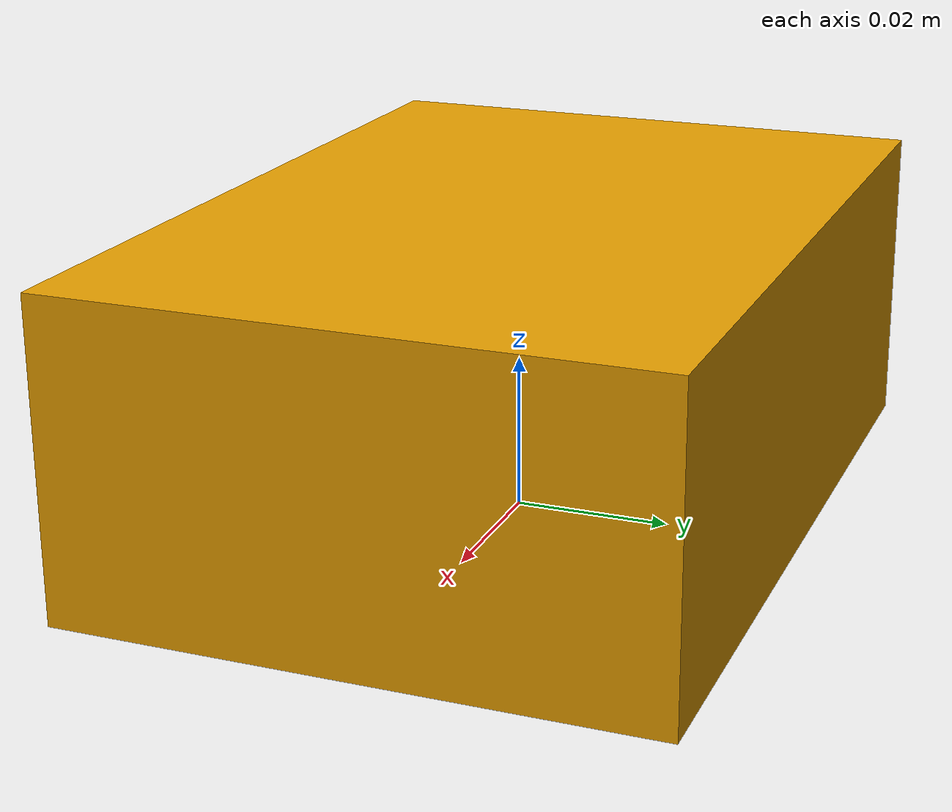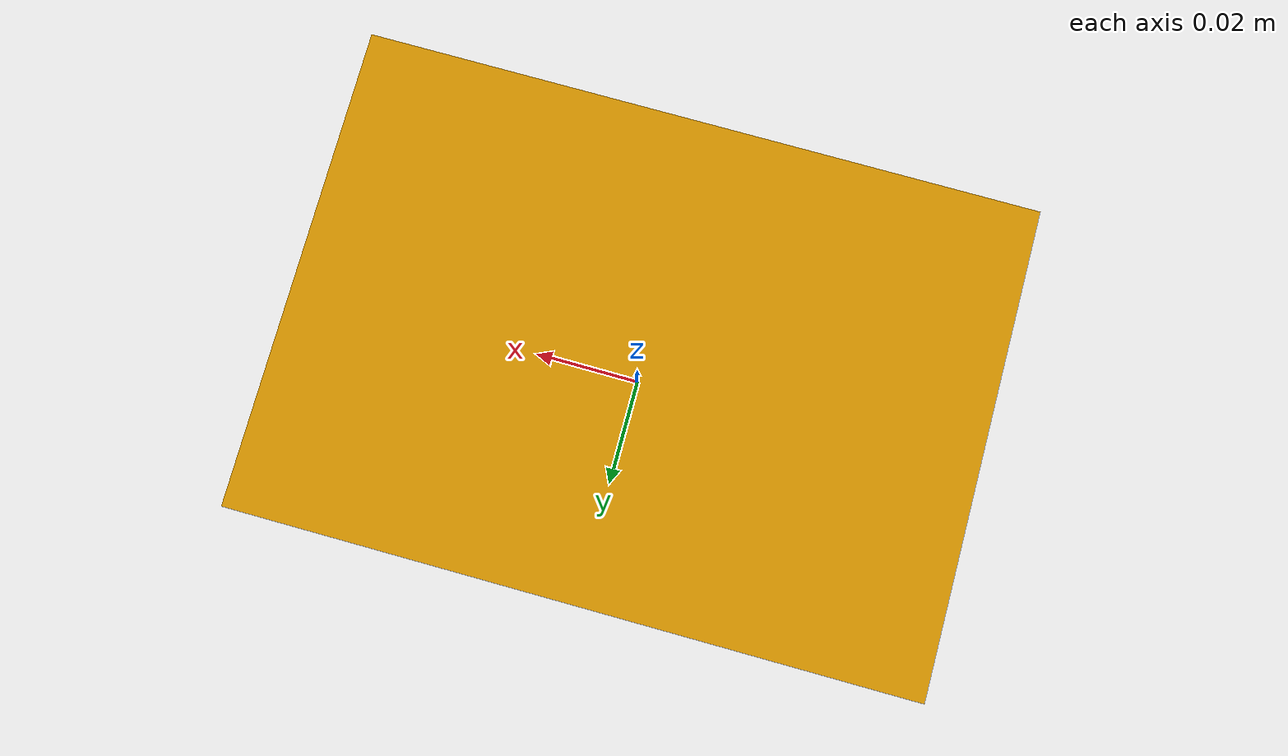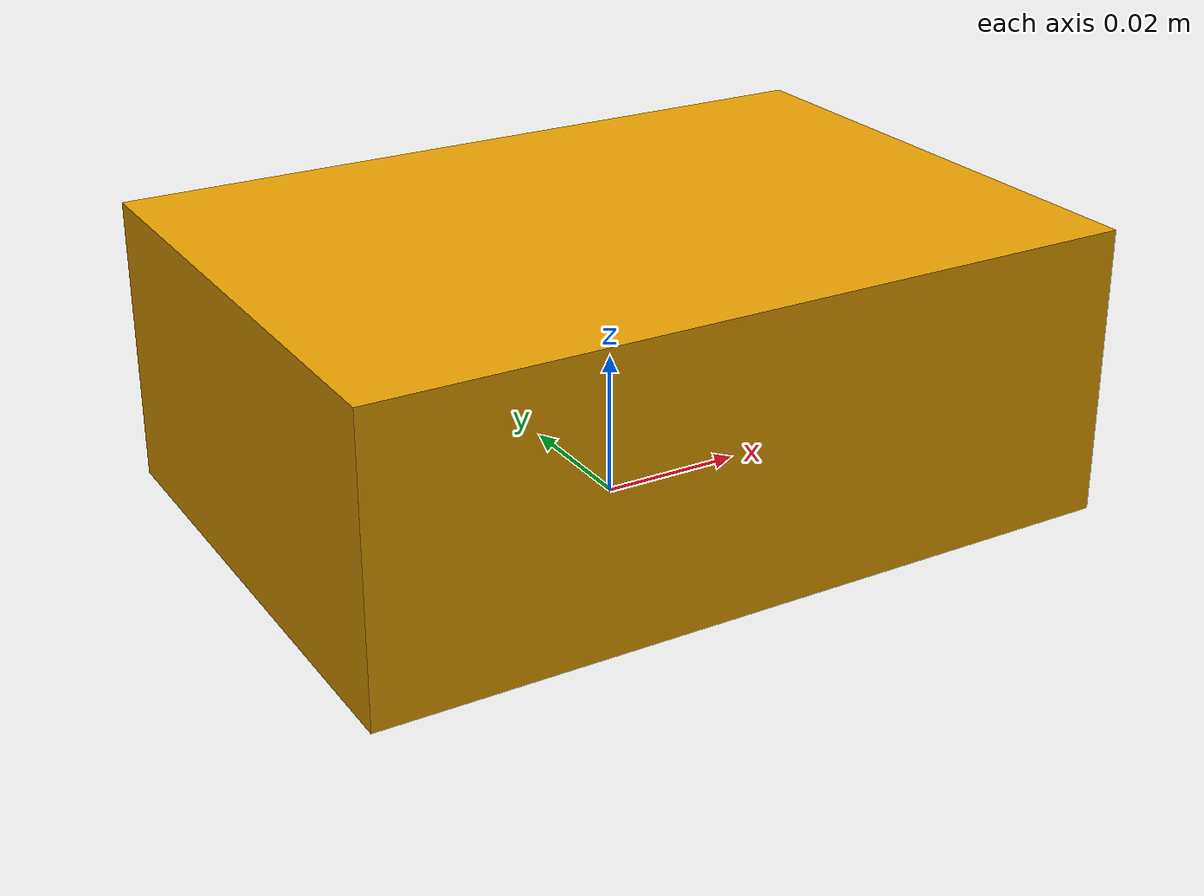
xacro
<robot name="payload" xmlns:xacro="http://ros.org/wiki/xacro">

    <xacro:arg name='robot_model' default='payload' />
    <xacro:arg name='robot_name' default='$(arg robot_model)' />

    <!-- Payload geometries -->
    <xacro:property name="payload_length" value="0.106" />
    <xacro:property name="payload_width" value="0.075" />
    <xacro:property name="payload_height" value="0.040" />
    <link name="$(arg robot_name)/base_link">
      <visual>
        <geometry>
          <box size="${payload_length} ${payload_width} ${payload_height}" />
        </geometry>
        <origin xyz="0 0 ${payload_height/2}" />
      </visual>
    </link>

    <!-- Create payload target point -->
    <link name="$(arg robot_name)/target_link">
    </link>
    <!-- Set payload target position -->
    <joint name="$(arg robot_name)/target_position" type="fixed">
      <axis xyz="0 1 0" />
      <parent link="$(arg robot_name)/base_link" />
      <child link="$(arg robot_name)/target_link" />
      <origin xyz="0 0 ${payload_height/2}" /> <!-- Starting position -->
    </joint>

    <!-- Create payload aim point -->
    <link name="$(arg robot_name)/aim_link">
    </link>
    <!-- Create payload aim virtual prismatic joint -->
    <joint name="$(arg robot_name)/aim_joint" type="prismatic">
      <axis xyz="1 0 0" />
      <parent link="$(arg robot_name)/target_link" />
      <child link="$(arg robot_name)/aim_link" />
      <limit effort="1000.0" lower="0.0" upper="0.6" velocity="1000" /> <!-- Pretty sure does nothing -->
      <origin xyz="0 0 0" /> <!-- Starting position -->
    </joint>

  </robot>
